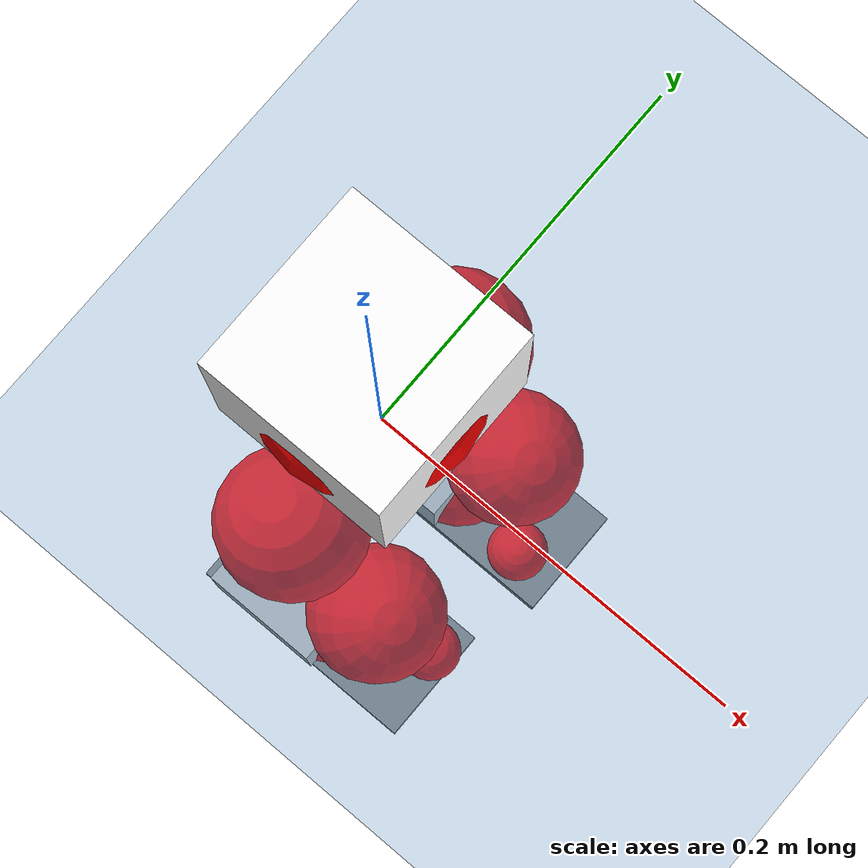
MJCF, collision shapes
<mujoco model="pi_12dof_release_v1">
  <compiler angle="radian" assetdir="assets" balanceinertia="true" inertiafromgeom="false"/>

  <option timestep="0.005" density="1.2" viscosity="2e-05"/>

  <size nkey="1"/>

  <visual>
    <quality shadowsize="8192"/>
    <map shadowclip="0.5"/>
  </visual>

  <default>
    <default class="/">
      <joint armature="0.01" damping="0.01" frictionloss="0.01"/>
      <geom contype="0" conaffinity="0" group="1" solref="-1000 -80"/>
      <site size="0.01 0.005 0.005" group="5"/>
      <general forcelimited="true" biastype="affine" gainprm="20" biasprm="0 -20 -0.5"/>
      <default class="foot">
        <geom size="0.0845 0.036 0.005" type="box" condim="6" group="4" priority="1" friction="0.9 0.2 0.2" solimp="0.015 1 0.005"/>
      </default>
      <default class="reward_collision_sphere">
        <geom group="5" rgba="1 0 0 1"/>
      </default>
    </default>
  </default>

  <asset>
    <texture type="skybox" colorspace="auto" name="//unnamed_texture_0" builtin="gradient" rgb1="0.95 0.95 0.95" rgb2="0.95 0.95 0.95" width="100" height="600"/>
    <texture type="2d" colorspace="auto" name="texplane" builtin="checker" rgb1="0.345 0.575 0.748" rgb2="0.345 0.575 0.748" markrgb="1 1 1" width="512" height="512"/>
    <material name="MatPlane" class="/" texture="texplane" texuniform="true" texrepeat="2 2" specular="0.9"/>
    <mesh name="baselink_1" class="/" file="baselink_1.STL"/>
    <mesh name="r_hip_pitch_link" class="/" file="r_hip_pitch_link.STL"/>
    <mesh name="r_hip_roll_link" class="/" file="r_hip_roll_link.STL"/>
    <mesh name="r_thigh_link" class="/" file="r_thigh_link.STL"/>
    <mesh name="r_calf_link" class="/" file="r_calf_link.STL"/>
    <mesh name="r_ankle_pitch_link" class="/" file="r_ankle_pitch_link.STL"/>
    <mesh name="r_ankle_roll_link" class="/" file="r_ankle_roll_link.STL"/>
    <mesh name="l_hip_pitch_link" class="/" file="l_hip_pitch_link.STL"/>
    <mesh name="l_hip_roll_link" class="/" file="l_hip_roll_link.STL"/>
    <mesh name="l_thigh_link" class="/" file="l_thigh_link.STL"/>
    <mesh name="l_calf_link" class="/" file="l_calf_link.STL"/>
    <mesh name="l_ankle_pitch_link" class="/" file="l_ankle_pitch_link.STL"/>
    <mesh name="l_ankle_roll_link" class="/" file="l_ankle_roll_link.STL"/>
  </asset>

  <worldbody>
    <geom name="floor" class="/" size="100 100 0.125" type="plane" group="0" material="MatPlane"/>
    <light name="toplight_shadow" class="/" pos="0 0 5" dir="0.0990148 0.0990148 -0.990148" type="directional" ambient="0.04 0.04 0.04" diffuse="0.55 0.55 0.55" specular="0.12 0.12 0.12"/>
    <light name="toplight_fill" class="/" pos="0 0 5" dir="0.0990148 0.0990148 -0.990148" type="directional" castshadow="false" ambient="0.04 0.04 0.04" diffuse="0.3 0.3 0.3" specular="0.08 0.08 0.08"/>
    <body name="trunk" pos="-0.00279092 -0.000693495 -0.00258312" quat="0.999999 0.000308026 0.000919753 0.00103478">
      <inertial pos="-0.000550026 0.0019366 0.0465229" quat="0.694663 -0.00210372 0.00539835 0.719312" mass="1.83378" diaginertia="0.00619711 0.00201361 0.010002"/>
      <joint name="//unnamed_joint_0" type="free"/>
      <geom name="//unnamed_geom_1" class="/" type="mesh" density="0" rgba="1 1 1 1" mesh="baselink_1"/>
      <geom name="//unnamed_geom_2" class="/" size="0.0472962 0.0472962 0.0472962" pos="0 0 0.0950404" type="box" rgba="1 1 1 1"/>
      <geom name="//unnamed_geom_3" class="reward_collision_sphere" size="0.0520258" pos="0 0 0.0831604"/>
      <site name="imu" class="/" pos="0.0136509 -0.00351527 -0.00859426" size="0.00945924"/>
      <camera name="track" class="/" pos="0 -1.48156 0" quat="0.707107 0.707107 0 0" mode="trackcom"/>
      <camera name="ego_camera" class="/" pos="0.0681741 0 0.213841" quat="-0.5 -0.5 0.5 0.5"/>
      <body name="r_hip_pitch_link" pos="-0.00169504 -0.0173247 -0.0400588" quat="0.992172 0.000385701 -0.124876 -0.000160075">
        <inertial pos="-0.00180859 -0.0411039 -0.000293205" quat="-0.0299611 0.701131 -0.0232162 0.712024" mass="0.319425" diaginertia="6.89434e-05 2.24658e-05 0.000207257"/>
        <joint name="r_hip_pitch_joint" class="/" pos="0 0 0" axis="-0.00386031 -0.999993 -6.5074e-05" range="-1.75411 1.22526" armature="0.00820071" damping="0.0104615" frictionloss="0.00990845"/>
        <geom name="//unnamed_geom_4" class="/" type="mesh" density="0" rgba="0.75294 0.75294 0.75294 1" mesh="r_hip_pitch_link"/>
        <geom name="//unnamed_geom_5" class="/" size="0.000472962 0.000472962 0.000472962" type="box" rgba="0.75294 0.75294 0.75294 1"/>
        <body name="r_hip_roll_link" pos="-0.00180343 -0.0409793 4.8562e-05" quat="1 7.55473e-06 -8.71174e-06 1.85382e-05">
          <inertial pos="-0.00156302 -0.00175199 -0.0730984" quat="0.7051 -0.0789524 -0.0776487 0.700408" mass="0.326624" diaginertia="0.000204186 5.92954e-05 0.000300163"/>
          <joint name="r_hip_roll_joint" class="/" pos="0 0 0" axis="-0.999911 0.00679071 0.0115061" range="-0.14063 0.535382" armature="0.0102603" damping="0.00351644" frictionloss="0.00879113"/>
          <geom name="//unnamed_geom_6" class="/" type="mesh" density="0" rgba="0.75294 0.75294 0.75294 1" mesh="r_hip_roll_link"/>
          <geom name="//unnamed_geom_7" class="/" size="0.000472962 0.000472962 0.000472962" type="box" rgba="0.75294 0.75294 0.75294 1"/>
          <geom name="//unnamed_geom_8" class="reward_collision_sphere" size="0.037837"/>
          <body name="r_thigh_link" pos="9.44367e-05 0.00147617 -0.0790954" quat="1 5.53612e-05 -0.000143311 -0.000569188">
            <inertial pos="-0.000415588 -0.00209909 -0.0535858" quat="0.737603 0.675234 -0.000218816 -0.000268671" mass="0.0974836" diaginertia="8.02269e-05 2.10143e-05 0.000137062"/>
            <joint name="r_thigh_joint" class="/" pos="0 0 0" axis="0.0112179 -0.0116076 -0.99987" stiffness="0.00411641" range="-0.28145 0.630975" armature="0.00933831" damping="0" frictionloss="0.00914976"/>
            <geom name="//unnamed_geom_9" class="/" type="mesh" density="0" rgba="0.75294 0.75294 0.75294 1" mesh="r_thigh_link"/>
            <geom name="//unnamed_geom_10" class="/" size="0.000472962 0.000472962 0.000472962" type="box" rgba="0.75294 0.75294 0.75294 1"/>
            <body name="r_calf_link" pos="0.00297833 0.00160312 -0.0818962" quat="0.947636 -1.49559e-05 0.319353 -3.20638e-05">
              <inertial pos="-0.00162684 -0.00353978 -0.0825893" quat="0.99997 -0.00675996 0.00284021 -0.00268875" mass="0.699498" diaginertia="0.00215265 0.000816393 0.000419598"/>
              <joint name="r_calf_joint" class="/" pos="0 0 0" axis="-0.000816629 -0.999999 -0.00145783" range="-1.6138 0.653203" armature="0.00810927" damping="0.00453541" frictionloss="0.00956157"/>
              <geom name="//unnamed_geom_11" class="/" type="mesh" density="0" rgba="0.75294 0.75294 0.75294 1" mesh="r_calf_link"/>
              <geom name="//unnamed_geom_12" class="/" size="0.000472962 0.000472962 0.000472962" type="box" rgba="0.75294 0.75294 0.75294 1"/>
              <geom name="//unnamed_geom_13" class="reward_collision_sphere" size="0.037837"/>
              <body name="r_ankle_pitch_link" pos="0.00258194 -0.000677664 -0.168406" quat="0.979919 -0.000234415 -0.199398 0.000208964">
                <inertial pos="0.00383716 0.0026214 -0.00155453" quat="0.00222051 0.706679 -0.00483053 0.707514" mass="0.154189" diaginertia="0.000188227 5.04884e-05 0.000289438"/>
                <joint name="r_ankle_pitch_joint" class="/" pos="0 0 0" axis="0.00696731 -0.999971 -0.00307986" stiffness="0.00234205" range="-1.29126 0.521548" armature="0.00950289" damping="0.0104193" frictionloss="0.0104967"/>
                <geom name="//unnamed_geom_14" class="/" type="mesh" density="0" rgba="0.75294 0.75294 0.75294 1" mesh="r_ankle_pitch_link"/>
                <geom name="//unnamed_geom_15" class="/" size="0.036891 0.037837 0.0236481" type="box" rgba="0.75294 0.75294 0.75294 1"/>
                <body name="r_ankle_roll_link" pos="0.0700353 0.00270025 -0.00030272" quat="1 -0.000170829 -4.24698e-05 0.000453608">
                  <inertial pos="-0.0218327 -0.000856671 -0.0167104" quat="0.551063 0.43536 0.443031 0.557239" mass="0.421898" diaginertia="0.000716399 0.000231006 0.000650312"/>
                  <joint name="r_ankle_roll_joint" class="/" pos="0 0 0" axis="-0.999953 0.00314972 -0.0091576" range="-0.0935634 0.107397" armature="0.00867835" damping="0.0198358" frictionloss="0.00817038"/>
                  <geom name="//unnamed_geom_16" class="/" type="mesh" density="0" rgba="0.75294 0.75294 0.75294 1" mesh="r_ankle_roll_link"/>
                  <geom name="//unnamed_geom_17" class="/" type="mesh" rgba="0.75294 0.75294 0.75294 1" mesh="r_ankle_roll_link"/>
                  <geom name="right_foot" class="foot" size="0.0760759 0.0380459 0.00464503" pos="-0.0463584 0 -0.0522722"/>
                  <geom name="//unnamed_geom_19" class="reward_collision_sphere" size="0.037837" pos="-0.0454494 0 -0.0237601"/>
                  <geom name="//unnamed_geom_20" class="reward_collision_sphere" size="0.0189185" pos="0.0136348 0.0148156 -0.0475202"/>
                  <geom name="//unnamed_geom_21" class="reward_collision_sphere" size="0.0189185" pos="-0.109079 0.0148156 -0.0475202"/>
                  <site name="right_foot" class="foot" pos="-0.0463584 0 -0.0522722" size="0.00945924"/>
                </body>
              </body>
            </body>
          </body>
        </body>
      </body>
      <body name="l_hip_pitch_link" pos="-0.000308326 0.0147653 -0.0407001" quat="0.992212 2.26613e-05 -0.124561 0.000128049">
        <inertial pos="0.00118477 0.041018 -0.00212727" quat="-0.0399902 0.703826 0.026881 0.708736" mass="0.341308" diaginertia="8.27802e-05 2.28688e-05 0.000237859"/>
        <joint name="l_hip_pitch_joint" class="/" pos="0 0 0" axis="0.00894536 0.999935 -0.00709643" range="-1.19225 1.72993" armature="0.010815" damping="0.00540204" frictionloss="0.00974304"/>
        <geom name="//unnamed_geom_22" class="/" type="mesh" density="0" rgba="0.75294 0.75294 0.75294 1" mesh="l_hip_pitch_link"/>
        <geom name="//unnamed_geom_23" class="/" size="0.000472962 0.000472962 0.000472962" type="box" rgba="0.75294 0.75294 0.75294 1"/>
        <body name="l_hip_roll_link" pos="-8.58457e-06 0.0408015 -0.00061426" quat="1 0.000565572 -6.34542e-05 -0.00017689">
          <inertial pos="-0.00359112 -0.000220689 -0.0729921" quat="0.696972 -0.0782155 -0.0691511 0.709458" mass="0.338705" diaginertia="0.000208121 6.32595e-05 0.000304983"/>
          <joint name="l_hip_roll_joint" class="/" pos="0 0 0" axis="-0.999997 0.000249819 0.00238961" stiffness="0.0056996" range="-0.531228 0.168767" armature="0.00824892" damping="0.00442953" frictionloss="0.00947106"/>
          <geom name="//unnamed_geom_24" class="/" type="mesh" density="0" rgba="0.75294 0.75294 0.75294 1" mesh="l_hip_roll_link"/>
          <geom name="//unnamed_geom_25" class="/" size="0.000472962 0.000472962 0.000472962" type="box" rgba="0.75294 0.75294 0.75294 1"/>
          <geom name="//unnamed_geom_26" class="reward_collision_sphere" size="0.037837"/>
          <body name="l_thigh_link" pos="-0.00277151 0.00188539 -0.0852348" quat="1 3.99183e-05 -0.000342545 -6.16917e-05">
            <inertial pos="0.00292871 -0.0041726 -0.0535762" quat="0.679576 0.733517 -0.00863679 -0.00737309" mass="0.0927301" diaginertia="7.7787e-05 2.17884e-05 0.000135176"/>
            <joint name="l_thigh_joint" class="/" pos="0 0 0" axis="-0.00150821 -0.000426883 -0.999999" range="-0.59413 0.245737" armature="0.00942458" damping="0.00328945" frictionloss="0.00986729"/>
            <geom name="//unnamed_geom_27" class="/" type="mesh" density="0" rgba="0.75294 0.75294 0.75294 1" mesh="l_thigh_link"/>
            <geom name="//unnamed_geom_28" class="/" size="0.000472962 0.000472962 0.000472962" type="box" rgba="0.75294 0.75294 0.75294 1"/>
            <body name="l_calf_link" pos="0.00176875 -0.000692732 -0.0830665" quat="0.947551 -0.000592761 0.319603 -4.08972e-05">
              <inertial pos="0.000626616 0.00445117 -0.0859141" quat="0.999984 0.00310956 -0.00010843 0.00470555" mass="0.698653" diaginertia="0.00216631 0.000771165 0.000406142"/>
              <joint name="l_calf_joint" class="/" pos="0 0 0" axis="-0.00145286 0.999999 0.000611025" range="-0.631209 1.69012" armature="0.00957384" damping="0.0072188" frictionloss="0.0101777"/>
              <geom name="//unnamed_geom_29" class="/" type="mesh" density="0" rgba="0.75294 0.75294 0.75294 1" mesh="l_calf_link"/>
              <geom name="//unnamed_geom_30" class="/" size="0.000472962 0.000472962 0.000472962" type="box" rgba="0.75294 0.75294 0.75294 1"/>
              <geom name="//unnamed_geom_31" class="reward_collision_sphere" size="0.037837"/>
              <body name="l_ankle_pitch_link" pos="0.0015297 0.000866802 -0.165016" quat="0.980052 4.28495e-05 -0.198743 0.000223392">
                <inertial pos="0.00153545 0.00213724 4.23584e-06" quat="-0.00172926 0.707707 0.00175639 0.706502" mass="0.13986" diaginertia="0.000190545 4.85759e-05 0.000283442"/>
                <joint name="l_ankle_pitch_joint" class="/" pos="0 0 0" axis="0.000990626 0.999997 0.00230241" range="-0.542051 1.31" armature="0.00834389" damping="0.0112747" frictionloss="0.00957953"/>
                <geom name="//unnamed_geom_32" class="/" type="mesh" density="0" rgba="0.75294 0.75294 0.75294 1" mesh="l_ankle_pitch_link"/>
                <geom name="//unnamed_geom_33" class="/" size="0.036891 0.037837 0.0236481" type="box" rgba="0.75294 0.75294 0.75294 1"/>
                <body name="l_ankle_roll_link" pos="0.0700462 0.000728655 0.0015161" quat="1 -4.02378e-05 -3.54897e-05 5.05821e-05">
                  <inertial pos="-0.0211068 -0.000470635 -0.017757" quat="0.559887 0.42842 0.433969 0.56094" mass="0.409124" diaginertia="0.000676271 0.000224821 0.000638662"/>
                  <joint name="l_ankle_roll_joint" class="/" pos="0 0 0" axis="-0.999993 -0.000515054 -0.00380614" range="-0.128564 0.150393" armature="0.0107907" damping="0.0127193" frictionloss="0.00952585"/>
                  <geom name="//unnamed_geom_34" class="/" type="mesh" density="0" rgba="0.75294 0.75294 0.75294 1" mesh="l_ankle_roll_link"/>
                  <geom name="//unnamed_geom_35" class="/" type="mesh" rgba="0.75294 0.75294 0.75294 1" mesh="l_ankle_roll_link"/>
                  <geom name="left_foot" class="foot" size="0.0898982 0.0362281 0.00487022" pos="-0.0463584 0 -0.0522722"/>
                  <geom name="//unnamed_geom_37" class="reward_collision_sphere" size="0.037837" pos="-0.0454494 0 -0.0237601"/>
                  <geom name="//unnamed_geom_38" class="reward_collision_sphere" size="0.0189185" pos="0.0136348 -0.0148156 -0.0475202"/>
                  <geom name="//unnamed_geom_39" class="reward_collision_sphere" size="0.0189185" pos="-0.109079 -0.0148156 -0.0475202"/>
                  <site name="left_foot" class="foot" pos="-0.0463584 0 -0.0522722" size="0.00945924"/>
                </body>
              </body>
            </body>
          </body>
        </body>
      </body>
    </body>
  </worldbody>

  <contact>
    <pair class="/" geom1="floor" geom2="right_foot" name="//unnamed_contact_1"/>
    <pair class="/" geom1="floor" geom2="left_foot" name="//unnamed_contact_0"/>
  </contact>

  <actuator>
    <general name="r_hip_pitch_joint" class="/" joint="r_hip_pitch_joint" forcerange="-19.7338 19.7338" gainprm="18.862" biasprm="0 -18.862 -0.44508"/>
    <general name="r_hip_roll_joint" class="/" joint="r_hip_roll_joint" forcerange="-18.3263 18.3263" gainprm="18.862" biasprm="0 -18.862 -0.44508"/>
    <general name="r_thigh_joint" class="/" joint="r_thigh_joint" forcerange="-21.9152 21.9152" gainprm="18.862" biasprm="0 -18.862 -0.44508"/>
    <general name="r_calf_joint" class="/" joint="r_calf_joint" forcerange="-18.7729 18.7729" gainprm="18.862" biasprm="0 -18.862 -0.44508"/>
    <general name="r_ankle_pitch_joint" class="/" joint="r_ankle_pitch_joint" forcerange="-21.1364 21.1364" gainprm="18.862" biasprm="0 -18.862 -0.44508"/>
    <general name="r_ankle_roll_joint" class="/" joint="r_ankle_roll_joint" forcerange="-21.8426 21.8426" gainprm="18.862" biasprm="0 -18.862 -0.44508"/>
    <general name="l_hip_pitch_joint" class="/" joint="l_hip_pitch_joint" forcerange="-19.7668 19.7668" gainprm="18.862" biasprm="0 -18.862 -0.44508"/>
    <general name="l_hip_roll_joint" class="/" joint="l_hip_roll_joint" forcerange="-21.617 21.617" gainprm="18.862" biasprm="0 -18.862 -0.44508"/>
    <general name="l_thigh_joint" class="/" joint="l_thigh_joint" forcerange="-18.4688 18.4688" gainprm="18.862" biasprm="0 -18.862 -0.44508"/>
    <general name="l_calf_joint" class="/" joint="l_calf_joint" forcerange="-19.0434 19.0434" gainprm="18.862" biasprm="0 -18.862 -0.44508"/>
    <general name="l_ankle_pitch_joint" class="/" joint="l_ankle_pitch_joint" forcerange="-21.9314 21.9314" gainprm="18.862" biasprm="0 -18.862 -0.44508"/>
    <general name="l_ankle_roll_joint" class="/" joint="l_ankle_roll_joint" forcerange="-20.21 20.21" gainprm="18.862" biasprm="0 -18.862 -0.44508"/>
  </actuator>

  <sensor>
    <gyro site="imu" name="imu_angular_velocity"/>
    <velocimeter site="imu" name="imu_linear_velocity"/>
    <framelinvel objtype="site" objname="left_foot" name="left_foot_global_linear_velocity"/>
    <framelinvel objtype="site" objname="right_foot" name="right_foot_global_linear_velocity"/>
  </sensor>

  <keyframe>
    <key name="home" qpos="0 0 0.291 1 0 0 0 0.4 0 0 -0.8 0.4 0 -0.4 0 0 0.8 -0.4 0"/>
  </keyframe>
</mujoco>
